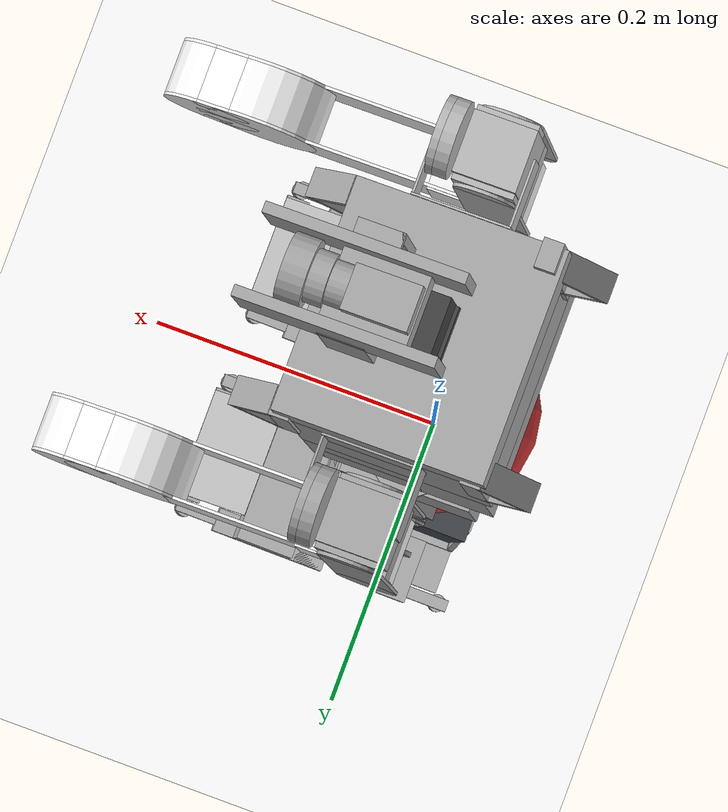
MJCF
<mujoco model="wolfgang feetonly flat terrain scene">
  <include file="wolfgang_mjx_feetonly.xml"/>

  <statistic center="0 0 0.1" extent="0.8" meansize="0.04"/>

  <visual>
    <headlight diffuse=".8 .8 .8" ambient=".2 .2 .2" specular="1 1 1"/>
    <rgba force="1 0 0 1"/>
    <global azimuth="120" elevation="-20"/>
    <map force="0.01"/>
    <scale forcewidth="0.3" contactwidth="0.5" contactheight="0.2"/>
    <quality shadowsize="8192"/>
  </visual>

  <asset>
    <texture type="skybox" builtin="gradient" rgb1="1 1 1" rgb2="1 1 1" width="800" height="800"/>
    <texture type="2d" name="groundplane" builtin="checker" mark="edge" rgb1="1 1 1" rgb2="1 1 1" markrgb="0 0 0"
      width="300" height="300"/>
    <material name="groundplane" texture="groundplane" texuniform="true" texrepeat="5 5" reflectance="0"/>
    <material name="ball" rgba="0.8 0.2 0.2 1"/>
  </asset>

  <worldbody>
    <geom name="floor" size="0 0 0.01" type="plane" material="groundplane" contype="1" conaffinity="0" priority="1"
      friction="0.6 0.01 0.01" condim="6"/>
    <body name="ball" pos="0 0 0.07" euler="0 0 0">
      <freejoint/>
      <site name="ball_center"/>
      <geom type="sphere" size="0.07" pos="0 0 0.07" mass="0.205" material="ball" contype="1" conaffinity="1" friction="0.6 0.1 0.1" condim="6"/>
    </body>
  </worldbody>

  <sensor>
    <framelinvel objtype="site" objname="ball_center" name="ball_global_linvel"/>
  </sensor>

  <keyframe>
    <key name="home"
      qpos="
    0 0 0.4274
    0.999 0.0 0.05 0.0
    0.023628265148262724 -0.10401795710581162 -0.7352626990449959 -1.3228415184260092 0.5495038397740458 -0.12913515511895796
    -0.016441795868928723 0.07253788412595062 0.7420808433462046 1.334527650998329 -0.5537397918567754 0.07437380704149316
    1 0 0.07
    1 0 0 0"
      ctrl="
    0 0 0 0 0 0
    0 0 0 0 0 0"/>
  </keyframe>
</mujoco>
